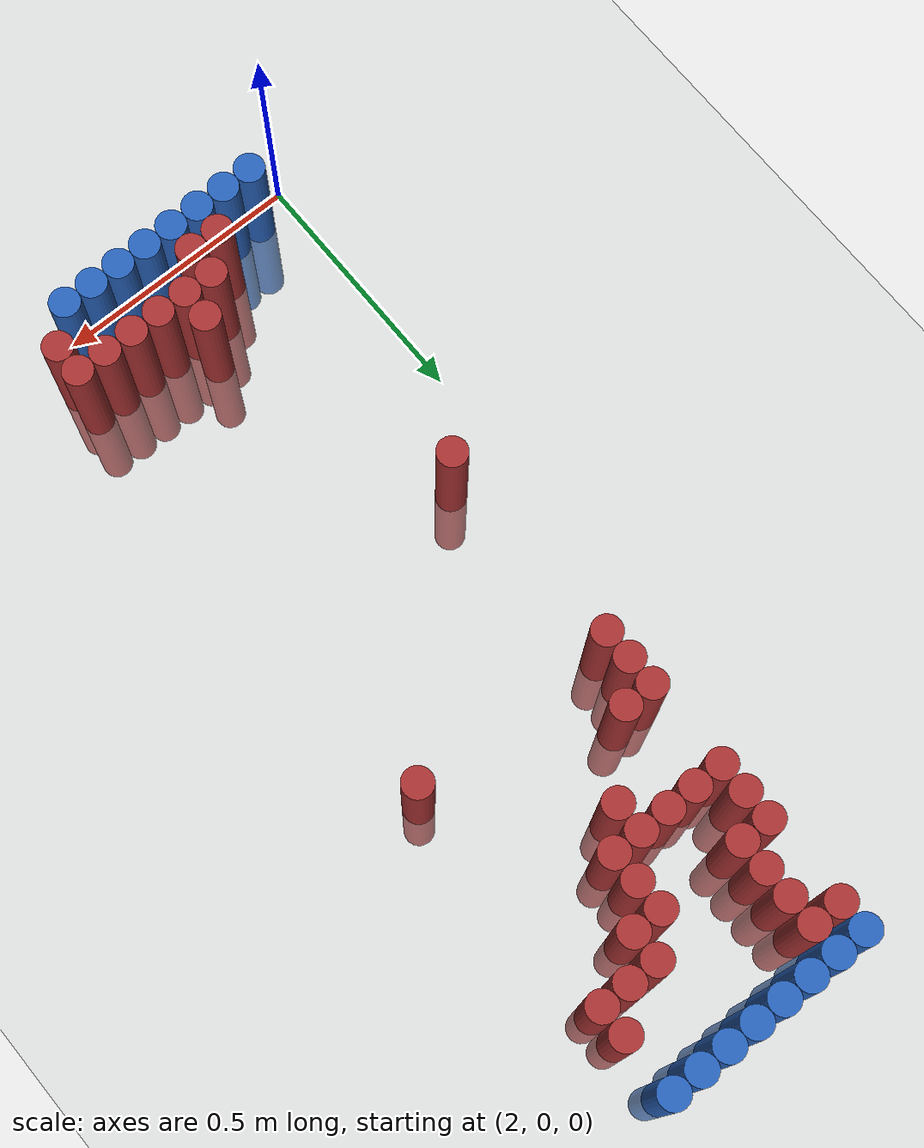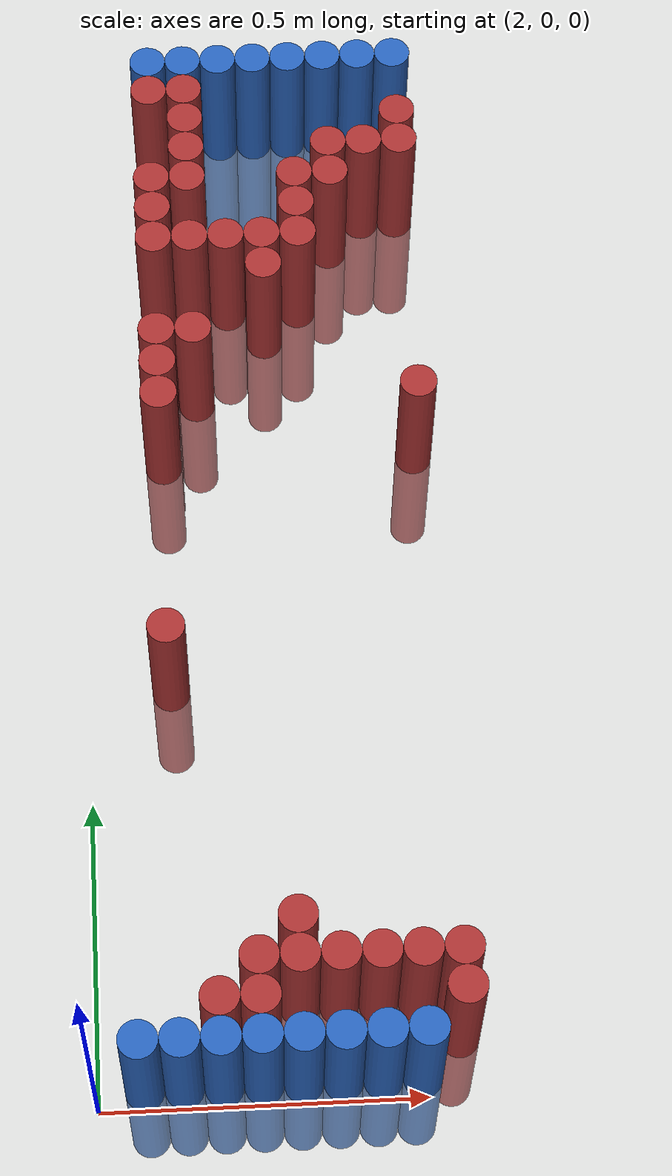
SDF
<sdf version="1.6">
 <world name="default">
  <model name="ground_plane">
   <static>1</static>
   <link name="link">
    <collision name="collision">
     <geometry><plane><normal>0 0 1</normal><size>100 100</size></plane></geometry>
     <surface><friction><ode><mu>100</mu><mu2>50</mu2></ode></friction></surface>
    </collision>
    <visual name="visual">
     <cast_shadows>0</cast_shadows>
     <geometry><plane><normal>0 0 1</normal><size>100 100</size></plane></geometry>
     <material>
      <script><uri>file://media/materials/scripts/gazebo.material</uri><name>Gazebo/Grey</name></script>
     </material>
    </visual>
   </link>
  </model>
  <model name="unit_cylinder_96">
   <static>1</static>
   <pose>2.130000 1.770000 0.000000 0.000000 0.000000 0.000000</pose>
   <link name="link">
    <inertial>
     <mass>1</mass>
     <inertia><ixx>0.145833</ixx><ixy>0</ixy><ixz>0</ixz><iyy>0.145833</iyy><iyz>0</iyz><izz>0.125</izz></inertia>
    </inertial>
    <collision name="collision">
     <geometry><cylinder><radius>0.030000</radius><length>0.5</length></cylinder></geometry>
    </collision>
    <visual name="visual">
     <geometry><cylinder><radius>0.030000</radius><length>0.5</length></cylinder></geometry>
     <material>
      <ambient>0.152000 0.379000 0.720000 1</ambient>
      <diffuse>0.152000 0.379000 0.720000 1</diffuse>
     </material>
     <material>
      <script><name>Gazebo/Grey</name><uri>file://media/materials/scripts/gazebo.material</uri></script>
     </material>
    </visual>
   </link>
  </model>
  <model name="unit_cylinder_97">
   <static>1</static>
   <pose>2.190000 1.770000 0.000000 0.000000 0.000000 0.000000</pose>
   <link name="link">
    <inertial>
     <mass>1</mass>
     <inertia><ixx>0.145833</ixx><ixy>0</ixy><ixz>0</ixz><iyy>0.145833</iyy><iyz>0</iyz><izz>0.125</izz></inertia>
    </inertial>
    <collision name="collision">
     <geometry><cylinder><radius>0.030000</radius><length>0.5</length></cylinder></geometry>
    </collision>
    <visual name="visual">
     <geometry><cylinder><radius>0.030000</radius><length>0.5</length></cylinder></geometry>
     <material>
      <ambient>0.152000 0.379000 0.720000 1</ambient>
      <diffuse>0.152000 0.379000 0.720000 1</diffuse>
     </material>
     <material>
      <script><name>Gazebo/Grey</name><uri>file://media/materials/scripts/gazebo.material</uri></script>
     </material>
    </visual>
   </link>
  </model>
  <model name="unit_cylinder_98">
   <static>1</static>
   <pose>2.250000 1.770000 0.000000 0.000000 0.000000 0.000000</pose>
   <link name="link">
    <inertial>
     <mass>1</mass>
     <inertia><ixx>0.145833</ixx><ixy>0</ixy><ixz>0</ixz><iyy>0.145833</iyy><iyz>0</iyz><izz>0.125</izz></inertia>
    </inertial>
    <collision name="collision">
     <geometry><cylinder><radius>0.030000</radius><length>0.5</length></cylinder></geometry>
    </collision>
    <visual name="visual">
     <geometry><cylinder><radius>0.030000</radius><length>0.5</length></cylinder></geometry>
     <material>
      <ambient>0.152000 0.379000 0.720000 1</ambient>
      <diffuse>0.152000 0.379000 0.720000 1</diffuse>
     </material>
     <material>
      <script><name>Gazebo/Grey</name><uri>file://media/materials/scripts/gazebo.material</uri></script>
     </material>
    </visual>
   </link>
  </model>
  <model name="unit_cylinder_99">
   <static>1</static>
   <pose>2.310000 1.770000 0.000000 0.000000 0.000000 0.000000</pose>
   <link name="link">
    <inertial>
     <mass>1</mass>
     <inertia><ixx>0.145833</ixx><ixy>0</ixy><ixz>0</ixz><iyy>0.145833</iyy><iyz>0</iyz><izz>0.125</izz></inertia>
    </inertial>
    <collision name="collision">
     <geometry><cylinder><radius>0.030000</radius><length>0.5</length></cylinder></geometry>
    </collision>
    <visual name="visual">
     <geometry><cylinder><radius>0.030000</radius><length>0.5</length></cylinder></geometry>
     <material>
      <ambient>0.152000 0.379000 0.720000 1</ambient>
      <diffuse>0.152000 0.379000 0.720000 1</diffuse>
     </material>
     <material>
      <script><name>Gazebo/Grey</name><uri>file://media/materials/scripts/gazebo.material</uri></script>
     </material>
    </visual>
   </link>
  </model>
  <model name="unit_cylinder_100">
   <static>1</static>
   <pose>2.370000 1.770000 0.000000 0.000000 0.000000 0.000000</pose>
   <link name="link">
    <inertial>
     <mass>1</mass>
     <inertia><ixx>0.145833</ixx><ixy>0</ixy><ixz>0</ixz><iyy>0.145833</iyy><iyz>0</iyz><izz>0.125</izz></inertia>
    </inertial>
    <collision name="collision">
     <geometry><cylinder><radius>0.030000</radius><length>0.5</length></cylinder></geometry>
    </collision>
    <visual name="visual">
     <geometry><cylinder><radius>0.030000</radius><length>0.5</length></cylinder></geometry>
     <material>
      <ambient>0.152000 0.379000 0.720000 1</ambient>
      <diffuse>0.152000 0.379000 0.720000 1</diffuse>
     </material>
     <material>
      <script><name>Gazebo/Grey</name><uri>file://media/materials/scripts/gazebo.material</uri></script>
     </material>
    </visual>
   </link>
  </model>
  <model name="unit_cylinder_101">
   <static>1</static>
   <pose>2.430000 1.770000 0.000000 0.000000 0.000000 0.000000</pose>
   <link name="link">
    <inertial>
     <mass>1</mass>
     <inertia><ixx>0.145833</ixx><ixy>0</ixy><ixz>0</ixz><iyy>0.145833</iyy><iyz>0</iyz><izz>0.125</izz></inertia>
    </inertial>
    <collision name="collision">
     <geometry><cylinder><radius>0.030000</radius><length>0.5</length></cylinder></geometry>
    </collision>
    <visual name="visual">
     <geometry><cylinder><radius>0.030000</radius><length>0.5</length></cylinder></geometry>
     <material>
      <ambient>0.152000 0.379000 0.720000 1</ambient>
      <diffuse>0.152000 0.379000 0.720000 1</diffuse>
     </material>
     <material>
      <script><name>Gazebo/Grey</name><uri>file://media/materials/scripts/gazebo.material</uri></script>
     </material>
    </visual>
   </link>
  </model>
  <model name="unit_cylinder_102">
   <static>1</static>
   <pose>2.490000 1.770000 0.000000 0.000000 0.000000 0.000000</pose>
   <link name="link">
    <inertial>
     <mass>1</mass>
     <inertia><ixx>0.145833</ixx><ixy>0</ixy><ixz>0</ixz><iyy>0.145833</iyy><iyz>0</iyz><izz>0.125</izz></inertia>
    </inertial>
    <collision name="collision">
     <geometry><cylinder><radius>0.030000</radius><length>0.5</length></cylinder></geometry>
    </collision>
    <visual name="visual">
     <geometry><cylinder><radius>0.030000</radius><length>0.5</length></cylinder></geometry>
     <material>
      <ambient>0.152000 0.379000 0.720000 1</ambient>
      <diffuse>0.152000 0.379000 0.720000 1</diffuse>
     </material>
     <material>
      <script><name>Gazebo/Grey</name><uri>file://media/materials/scripts/gazebo.material</uri></script>
     </material>
    </visual>
   </link>
  </model>
  <model name="unit_cylinder_103">
   <static>1</static>
   <pose>2.550000 1.770000 0.000000 0.000000 0.000000 0.000000</pose>
   <link name="link">
    <inertial>
     <mass>1</mass>
     <inertia><ixx>0.145833</ixx><ixy>0</ixy><ixz>0</ixz><iyy>0.145833</iyy><iyz>0</iyz><izz>0.125</izz></inertia>
    </inertial>
    <collision name="collision">
     <geometry><cylinder><radius>0.030000</radius><length>0.5</length></cylinder></geometry>
    </collision>
    <visual name="visual">
     <geometry><cylinder><radius>0.030000</radius><length>0.5</length></cylinder></geometry>
     <material>
      <ambient>0.152000 0.379000 0.720000 1</ambient>
      <diffuse>0.152000 0.379000 0.720000 1</diffuse>
     </material>
     <material>
      <script><name>Gazebo/Grey</name><uri>file://media/materials/scripts/gazebo.material</uri></script>
     </material>
    </visual>
   </link>
  </model>
  <model name="unit_cylinder_125">
   <static>1</static>
   <pose>2.130000 1.710000 0.000000 0.000000 0.000000 0.000000</pose>
   <link name="link">
    <inertial>
     <mass>1</mass>
     <inertia><ixx>0.145833</ixx><ixy>0</ixy><ixz>0</ixz><iyy>0.145833</iyy><iyz>0</iyz><izz>0.125</izz></inertia>
    </inertial>
    <collision name="collision">
     <geometry><cylinder><radius>0.030000</radius><length>0.5</length></cylinder></geometry>
    </collision>
    <visual name="visual">
     <geometry><cylinder><radius>0.030000</radius><length>0.5</length></cylinder></geometry>
     <material>
      <ambient>0.648000 0.192000 0.192000 1</ambient>
      <diffuse>0.648000 0.192000 0.192000 1</diffuse>
     </material>
     <material>
      <script><name>Gazebo/Grey</name><uri>file://media/materials/scripts/gazebo.material</uri></script>
     </material>
    </visual>
   </link>
  </model>
  <model name="unit_cylinder_126">
   <static>1</static>
   <pose>2.190000 1.710000 0.000000 0.000000 0.000000 0.000000</pose>
   <link name="link">
    <inertial>
     <mass>1</mass>
     <inertia><ixx>0.145833</ixx><ixy>0</ixy><ixz>0</ixz><iyy>0.145833</iyy><iyz>0</iyz><izz>0.125</izz></inertia>
    </inertial>
    <collision name="collision">
     <geometry><cylinder><radius>0.030000</radius><length>0.5</length></cylinder></geometry>
    </collision>
    <visual name="visual">
     <geometry><cylinder><radius>0.030000</radius><length>0.5</length></cylinder></geometry>
     <material>
      <ambient>0.648000 0.192000 0.192000 1</ambient>
      <diffuse>0.648000 0.192000 0.192000 1</diffuse>
     </material>
     <material>
      <script><name>Gazebo/Grey</name><uri>file://media/materials/scripts/gazebo.material</uri></script>
     </material>
    </visual>
   </link>
  </model>
  <model name="unit_cylinder_132">
   <static>1</static>
   <pose>2.190000 1.650000 0.000000 0.000000 0.000000 0.000000</pose>
   <link name="link">
    <inertial>
     <mass>1</mass>
     <inertia><ixx>0.145833</ixx><ixy>0</ixy><ixz>0</ixz><iyy>0.145833</iyy><iyz>0</iyz><izz>0.125</izz></inertia>
    </inertial>
    <collision name="collision">
     <geometry><cylinder><radius>0.030000</radius><length>0.5</length></cylinder></geometry>
    </collision>
    <visual name="visual">
     <geometry><cylinder><radius>0.030000</radius><length>0.5</length></cylinder></geometry>
     <material>
      <ambient>0.648000 0.192000 0.192000 1</ambient>
      <diffuse>0.648000 0.192000 0.192000 1</diffuse>
     </material>
     <material>
      <script><name>Gazebo/Grey</name><uri>file://media/materials/scripts/gazebo.material</uri></script>
     </material>
    </visual>
   </link>
  </model>
  <model name="unit_cylinder_133">
   <static>1</static>
   <pose>2.550000 1.650000 0.000000 0.000000 0.000000 0.000000</pose>
   <link name="link">
    <inertial>
     <mass>1</mass>
     <inertia><ixx>0.145833</ixx><ixy>0</ixy><ixz>0</ixz><iyy>0.145833</iyy><iyz>0</iyz><izz>0.125</izz></inertia>
    </inertial>
    <collision name="collision">
     <geometry><cylinder><radius>0.030000</radius><length>0.5</length></cylinder></geometry>
    </collision>
    <visual name="visual">
     <geometry><cylinder><radius>0.030000</radius><length>0.5</length></cylinder></geometry>
     <material>
      <ambient>0.648000 0.192000 0.192000 1</ambient>
      <diffuse>0.648000 0.192000 0.192000 1</diffuse>
     </material>
     <material>
      <script><name>Gazebo/Grey</name><uri>file://media/materials/scripts/gazebo.material</uri></script>
     </material>
    </visual>
   </link>
  </model>
  <model name="unit_cylinder_145">
   <static>1</static>
   <pose>2.190000 1.590000 0.000000 0.000000 0.000000 0.000000</pose>
   <link name="link">
    <inertial>
     <mass>1</mass>
     <inertia><ixx>0.145833</ixx><ixy>0</ixy><ixz>0</ixz><iyy>0.145833</iyy><iyz>0</iyz><izz>0.125</izz></inertia>
    </inertial>
    <collision name="collision">
     <geometry><cylinder><radius>0.030000</radius><length>0.5</length></cylinder></geometry>
    </collision>
    <visual name="visual">
     <geometry><cylinder><radius>0.030000</radius><length>0.5</length></cylinder></geometry>
     <material>
      <ambient>0.648000 0.192000 0.192000 1</ambient>
      <diffuse>0.648000 0.192000 0.192000 1</diffuse>
     </material>
     <material>
      <script><name>Gazebo/Grey</name><uri>file://media/materials/scripts/gazebo.material</uri></script>
     </material>
    </visual>
   </link>
  </model>
  <model name="unit_cylinder_146">
   <static>1</static>
   <pose>2.430000 1.590000 0.000000 0.000000 0.000000 0.000000</pose>
   <link name="link">
    <inertial>
     <mass>1</mass>
     <inertia><ixx>0.145833</ixx><ixy>0</ixy><ixz>0</ixz><iyy>0.145833</iyy><iyz>0</iyz><izz>0.125</izz></inertia>
    </inertial>
    <collision name="collision">
     <geometry><cylinder><radius>0.030000</radius><length>0.5</length></cylinder></geometry>
    </collision>
    <visual name="visual">
     <geometry><cylinder><radius>0.030000</radius><length>0.5</length></cylinder></geometry>
     <material>
      <ambient>0.648000 0.192000 0.192000 1</ambient>
      <diffuse>0.648000 0.192000 0.192000 1</diffuse>
     </material>
     <material>
      <script><name>Gazebo/Grey</name><uri>file://media/materials/scripts/gazebo.material</uri></script>
     </material>
    </visual>
   </link>
  </model>
  <model name="unit_cylinder_147">
   <static>1</static>
   <pose>2.490000 1.590000 0.000000 0.000000 0.000000 0.000000</pose>
   <link name="link">
    <inertial>
     <mass>1</mass>
     <inertia><ixx>0.145833</ixx><ixy>0</ixy><ixz>0</ixz><iyy>0.145833</iyy><iyz>0</iyz><izz>0.125</izz></inertia>
    </inertial>
    <collision name="collision">
     <geometry><cylinder><radius>0.030000</radius><length>0.5</length></cylinder></geometry>
    </collision>
    <visual name="visual">
     <geometry><cylinder><radius>0.030000</radius><length>0.5</length></cylinder></geometry>
     <material>
      <ambient>0.648000 0.192000 0.192000 1</ambient>
      <diffuse>0.648000 0.192000 0.192000 1</diffuse>
     </material>
     <material>
      <script><name>Gazebo/Grey</name><uri>file://media/materials/scripts/gazebo.material</uri></script>
     </material>
    </visual>
   </link>
  </model>
  <model name="unit_cylinder_148">
   <static>1</static>
   <pose>2.550000 1.590000 0.000000 0.000000 0.000000 0.000000</pose>
   <link name="link">
    <inertial>
     <mass>1</mass>
     <inertia><ixx>0.145833</ixx><ixy>0</ixy><ixz>0</ixz><iyy>0.145833</iyy><iyz>0</iyz><izz>0.125</izz></inertia>
    </inertial>
    <collision name="collision">
     <geometry><cylinder><radius>0.030000</radius><length>0.5</length></cylinder></geometry>
    </collision>
    <visual name="visual">
     <geometry><cylinder><radius>0.030000</radius><length>0.5</length></cylinder></geometry>
     <material>
      <ambient>0.648000 0.192000 0.192000 1</ambient>
      <diffuse>0.648000 0.192000 0.192000 1</diffuse>
     </material>
     <material>
      <script><name>Gazebo/Grey</name><uri>file://media/materials/scripts/gazebo.material</uri></script>
     </material>
    </visual>
   </link>
  </model>
  <model name="unit_cylinder_154">
   <static>1</static>
   <pose>2.130000 1.530000 0.000000 0.000000 0.000000 0.000000</pose>
   <link name="link">
    <inertial>
     <mass>1</mass>
     <inertia><ixx>0.145833</ixx><ixy>0</ixy><ixz>0</ixz><iyy>0.145833</iyy><iyz>0</iyz><izz>0.125</izz></inertia>
    </inertial>
    <collision name="collision">
     <geometry><cylinder><radius>0.030000</radius><length>0.5</length></cylinder></geometry>
    </collision>
    <visual name="visual">
     <geometry><cylinder><radius>0.030000</radius><length>0.5</length></cylinder></geometry>
     <material>
      <ambient>0.648000 0.192000 0.192000 1</ambient>
      <diffuse>0.648000 0.192000 0.192000 1</diffuse>
     </material>
     <material>
      <script><name>Gazebo/Grey</name><uri>file://media/materials/scripts/gazebo.material</uri></script>
     </material>
    </visual>
   </link>
  </model>
  <model name="unit_cylinder_155">
   <static>1</static>
   <pose>2.190000 1.530000 0.000000 0.000000 0.000000 0.000000</pose>
   <link name="link">
    <inertial>
     <mass>1</mass>
     <inertia><ixx>0.145833</ixx><ixy>0</ixy><ixz>0</ixz><iyy>0.145833</iyy><iyz>0</iyz><izz>0.125</izz></inertia>
    </inertial>
    <collision name="collision">
     <geometry><cylinder><radius>0.030000</radius><length>0.5</length></cylinder></geometry>
    </collision>
    <visual name="visual">
     <geometry><cylinder><radius>0.030000</radius><length>0.5</length></cylinder></geometry>
     <material>
      <ambient>0.648000 0.192000 0.192000 1</ambient>
      <diffuse>0.648000 0.192000 0.192000 1</diffuse>
     </material>
     <material>
      <script><name>Gazebo/Grey</name><uri>file://media/materials/scripts/gazebo.material</uri></script>
     </material>
    </visual>
   </link>
  </model>
  <model name="unit_cylinder_156">
   <static>1</static>
   <pose>2.370000 1.530000 0.000000 0.000000 0.000000 0.000000</pose>
   <link name="link">
    <inertial>
     <mass>1</mass>
     <inertia><ixx>0.145833</ixx><ixy>0</ixy><ixz>0</ixz><iyy>0.145833</iyy><iyz>0</iyz><izz>0.125</izz></inertia>
    </inertial>
    <collision name="collision">
     <geometry><cylinder><radius>0.030000</radius><length>0.5</length></cylinder></geometry>
    </collision>
    <visual name="visual">
     <geometry><cylinder><radius>0.030000</radius><length>0.5</length></cylinder></geometry>
     <material>
      <ambient>0.648000 0.192000 0.192000 1</ambient>
      <diffuse>0.648000 0.192000 0.192000 1</diffuse>
     </material>
     <material>
      <script><name>Gazebo/Grey</name><uri>file://media/materials/scripts/gazebo.material</uri></script>
     </material>
    </visual>
   </link>
  </model>
  <model name="unit_cylinder_157">
   <static>1</static>
   <pose>2.430000 1.530000 0.000000 0.000000 0.000000 0.000000</pose>
   <link name="link">
    <inertial>
     <mass>1</mass>
     <inertia><ixx>0.145833</ixx><ixy>0</ixy><ixz>0</ixz><iyy>0.145833</iyy><iyz>0</iyz><izz>0.125</izz></inertia>
    </inertial>
    <collision name="collision">
     <geometry><cylinder><radius>0.030000</radius><length>0.5</length></cylinder></geometry>
    </collision>
    <visual name="visual">
     <geometry><cylinder><radius>0.030000</radius><length>0.5</length></cylinder></geometry>
     <material>
      <ambient>0.648000 0.192000 0.192000 1</ambient>
      <diffuse>0.648000 0.192000 0.192000 1</diffuse>
     </material>
     <material>
      <script><name>Gazebo/Grey</name><uri>file://media/materials/scripts/gazebo.material</uri></script>
     </material>
    </visual>
   </link>
  </model>
  <model name="unit_cylinder_161">
   <static>1</static>
   <pose>2.130000 1.470000 0.000000 0.000000 0.000000 0.000000</pose>
   <link name="link">
    <inertial>
     <mass>1</mass>
     <inertia><ixx>0.145833</ixx><ixy>0</ixy><ixz>0</ixz><iyy>0.145833</iyy><iyz>0</iyz><izz>0.125</izz></inertia>
    </inertial>
    <collision name="collision">
     <geometry><cylinder><radius>0.030000</radius><length>0.5</length></cylinder></geometry>
    </collision>
    <visual name="visual">
     <geometry><cylinder><radius>0.030000</radius><length>0.5</length></cylinder></geometry>
     <material>
      <ambient>0.648000 0.192000 0.192000 1</ambient>
      <diffuse>0.648000 0.192000 0.192000 1</diffuse>
     </material>
     <material>
      <script><name>Gazebo/Grey</name><uri>file://media/materials/scripts/gazebo.material</uri></script>
     </material>
    </visual>
   </link>
  </model>
  <model name="unit_cylinder_162">
   <static>1</static>
   <pose>2.370000 1.470000 0.000000 0.000000 0.000000 0.000000</pose>
   <link name="link">
    <inertial>
     <mass>1</mass>
     <inertia><ixx>0.145833</ixx><ixy>0</ixy><ixz>0</ixz><iyy>0.145833</iyy><iyz>0</iyz><izz>0.125</izz></inertia>
    </inertial>
    <collision name="collision">
     <geometry><cylinder><radius>0.030000</radius><length>0.5</length></cylinder></geometry>
    </collision>
    <visual name="visual">
     <geometry><cylinder><radius>0.030000</radius><length>0.5</length></cylinder></geometry>
     <material>
      <ambient>0.648000 0.192000 0.192000 1</ambient>
      <diffuse>0.648000 0.192000 0.192000 1</diffuse>
     </material>
     <material>
      <script><name>Gazebo/Grey</name><uri>file://media/materials/scripts/gazebo.material</uri></script>
     </material>
    </visual>
   </link>
  </model>
  <model name="unit_cylinder_173">
   <static>1</static>
   <pose>2.130000 1.410000 0.000000 0.000000 0.000000 0.000000</pose>
   <link name="link">
    <inertial>
     <mass>1</mass>
     <inertia><ixx>0.145833</ixx><ixy>0</ixy><ixz>0</ixz><iyy>0.145833</iyy><iyz>0</iyz><izz>0.125</izz></inertia>
    </inertial>
    <collision name="collision">
     <geometry><cylinder><radius>0.030000</radius><length>0.5</length></cylinder></geometry>
    </collision>
    <visual name="visual">
     <geometry><cylinder><radius>0.030000</radius><length>0.5</length></cylinder></geometry>
     <material>
      <ambient>0.648000 0.192000 0.192000 1</ambient>
      <diffuse>0.648000 0.192000 0.192000 1</diffuse>
     </material>
     <material>
      <script><name>Gazebo/Grey</name><uri>file://media/materials/scripts/gazebo.material</uri></script>
     </material>
    </visual>
   </link>
  </model>
  <model name="unit_cylinder_174">
   <static>1</static>
   <pose>2.190000 1.410000 0.000000 0.000000 0.000000 0.000000</pose>
   <link name="link">
    <inertial>
     <mass>1</mass>
     <inertia><ixx>0.145833</ixx><ixy>0</ixy><ixz>0</ixz><iyy>0.145833</iyy><iyz>0</iyz><izz>0.125</izz></inertia>
    </inertial>
    <collision name="collision">
     <geometry><cylinder><radius>0.030000</radius><length>0.5</length></cylinder></geometry>
    </collision>
    <visual name="visual">
     <geometry><cylinder><radius>0.030000</radius><length>0.5</length></cylinder></geometry>
     <material>
      <ambient>0.648000 0.192000 0.192000 1</ambient>
      <diffuse>0.648000 0.192000 0.192000 1</diffuse>
     </material>
     <material>
      <script><name>Gazebo/Grey</name><uri>file://media/materials/scripts/gazebo.material</uri></script>
     </material>
    </visual>
   </link>
  </model>
  <model name="unit_cylinder_175">
   <static>1</static>
   <pose>2.250000 1.410000 0.000000 0.000000 0.000000 0.000000</pose>
   <link name="link">
    <inertial>
     <mass>1</mass>
     <inertia><ixx>0.145833</ixx><ixy>0</ixy><ixz>0</ixz><iyy>0.145833</iyy><iyz>0</iyz><izz>0.125</izz></inertia>
    </inertial>
    <collision name="collision">
     <geometry><cylinder><radius>0.030000</radius><length>0.5</length></cylinder></geometry>
    </collision>
    <visual name="visual">
     <geometry><cylinder><radius>0.030000</radius><length>0.5</length></cylinder></geometry>
     <material>
      <ambient>0.648000 0.192000 0.192000 1</ambient>
      <diffuse>0.648000 0.192000 0.192000 1</diffuse>
     </material>
     <material>
      <script><name>Gazebo/Grey</name><uri>file://media/materials/scripts/gazebo.material</uri></script>
     </material>
    </visual>
   </link>
  </model>
  <model name="unit_cylinder_176">
   <static>1</static>
   <pose>2.310000 1.410000 0.000000 0.000000 0.000000 0.000000</pose>
   <link name="link">
    <inertial>
     <mass>1</mass>
     <inertia><ixx>0.145833</ixx><ixy>0</ixy><ixz>0</ixz><iyy>0.145833</iyy><iyz>0</iyz><izz>0.125</izz></inertia>
    </inertial>
    <collision name="collision">
     <geometry><cylinder><radius>0.030000</radius><length>0.5</length></cylinder></geometry>
    </collision>
    <visual name="visual">
     <geometry><cylinder><radius>0.030000</radius><length>0.5</length></cylinder></geometry>
     <material>
      <ambient>0.648000 0.192000 0.192000 1</ambient>
      <diffuse>0.648000 0.192000 0.192000 1</diffuse>
     </material>
     <material>
      <script><name>Gazebo/Grey</name><uri>file://media/materials/scripts/gazebo.material</uri></script>
     </material>
    </visual>
   </link>
  </model>
  <model name="unit_cylinder_177">
   <static>1</static>
   <pose>2.370000 1.410000 0.000000 0.000000 0.000000 0.000000</pose>
   <link name="link">
    <inertial>
     <mass>1</mass>
     <inertia><ixx>0.145833</ixx><ixy>0</ixy><ixz>0</ixz><iyy>0.145833</iyy><iyz>0</iyz><izz>0.125</izz></inertia>
    </inertial>
    <collision name="collision">
     <geometry><cylinder><radius>0.030000</radius><length>0.5</length></cylinder></geometry>
    </collision>
    <visual name="visual">
     <geometry><cylinder><radius>0.030000</radius><length>0.5</length></cylinder></geometry>
     <material>
      <ambient>0.648000 0.192000 0.192000 1</ambient>
      <diffuse>0.648000 0.192000 0.192000 1</diffuse>
     </material>
     <material>
      <script><name>Gazebo/Grey</name><uri>file://media/materials/scripts/gazebo.material</uri></script>
     </material>
    </visual>
   </link>
  </model>
  <model name="unit_cylinder_182">
   <static>1</static>
   <pose>2.310000 1.350000 0.000000 0.000000 0.000000 0.000000</pose>
   <link name="link">
    <inertial>
     <mass>1</mass>
     <inertia><ixx>0.145833</ixx><ixy>0</ixy><ixz>0</ixz><iyy>0.145833</iyy><iyz>0</iyz><izz>0.125</izz></inertia>
    </inertial>
    <collision name="collision">
     <geometry><cylinder><radius>0.030000</radius><length>0.5</length></cylinder></geometry>
    </collision>
    <visual name="visual">
     <geometry><cylinder><radius>0.030000</radius><length>0.5</length></cylinder></geometry>
     <material>
      <ambient>0.648000 0.192000 0.192000 1</ambient>
      <diffuse>0.648000 0.192000 0.192000 1</diffuse>
     </material>
     <material>
      <script><name>Gazebo/Grey</name><uri>file://media/materials/scripts/gazebo.material</uri></script>
     </material>
    </visual>
   </link>
  </model>
  <model name="unit_cylinder_193">
   <static>1</static>
   <pose>2.130000 1.230000 0.000000 0.000000 0.000000 0.000000</pose>
   <link name="link">
    <inertial>
     <mass>1</mass>
     <inertia><ixx>0.145833</ixx><ixy>0</ixy><ixz>0</ixz><iyy>0.145833</iyy><iyz>0</iyz><izz>0.125</izz></inertia>
    </inertial>
    <collision name="collision">
     <geometry><cylinder><radius>0.030000</radius><length>0.5</length></cylinder></geometry>
    </collision>
    <visual name="visual">
     <geometry><cylinder><radius>0.030000</radius><length>0.5</length></cylinder></geometry>
     <material>
      <ambient>0.648000 0.192000 0.192000 1</ambient>
      <diffuse>0.648000 0.192000 0.192000 1</diffuse>
     </material>
     <material>
      <script><name>Gazebo/Grey</name><uri>file://media/materials/scripts/gazebo.material</uri></script>
     </material>
    </visual>
   </link>
  </model>
  <model name="unit_cylinder_194">
   <static>1</static>
   <pose>2.190000 1.230000 0.000000 0.000000 0.000000 0.000000</pose>
   <link name="link">
    <inertial>
     <mass>1</mass>
     <inertia><ixx>0.145833</ixx><ixy>0</ixy><ixz>0</ixz><iyy>0.145833</iyy><iyz>0</iyz><izz>0.125</izz></inertia>
    </inertial>
    <collision name="collision">
     <geometry><cylinder><radius>0.030000</radius><length>0.5</length></cylinder></geometry>
    </collision>
    <visual name="visual">
     <geometry><cylinder><radius>0.030000</radius><length>0.5</length></cylinder></geometry>
     <material>
      <ambient>0.648000 0.192000 0.192000 1</ambient>
      <diffuse>0.648000 0.192000 0.192000 1</diffuse>
     </material>
     <material>
      <script><name>Gazebo/Grey</name><uri>file://media/materials/scripts/gazebo.material</uri></script>
     </material>
    </visual>
   </link>
  </model>
  <model name="unit_cylinder_200">
   <static>1</static>
   <pose>2.130000 1.170000 0.000000 0.000000 0.000000 0.000000</pose>
   <link name="link">
    <inertial>
     <mass>1</mass>
     <inertia><ixx>0.145833</ixx><ixy>0</ixy><ixz>0</ixz><iyy>0.145833</iyy><iyz>0</iyz><izz>0.125</izz></inertia>
    </inertial>
    <collision name="collision">
     <geometry><cylinder><radius>0.030000</radius><length>0.5</length></cylinder></geometry>
    </collision>
    <visual name="visual">
     <geometry><cylinder><radius>0.030000</radius><length>0.5</length></cylinder></geometry>
     <material>
      <ambient>0.648000 0.192000 0.192000 1</ambient>
      <diffuse>0.648000 0.192000 0.192000 1</diffuse>
     </material>
     <material>
      <script><name>Gazebo/Grey</name><uri>file://media/materials/scripts/gazebo.material</uri></script>
     </material>
    </visual>
   </link>
  </model>
  <model name="unit_cylinder_208">
   <static>1</static>
   <pose>2.130000 1.110000 0.000000 0.000000 0.000000 0.000000</pose>
   <link name="link">
    <inertial>
     <mass>1</mass>
     <inertia><ixx>0.145833</ixx><ixy>0</ixy><ixz>0</ixz><iyy>0.145833</iyy><iyz>0</iyz><izz>0.125</izz></inertia>
    </inertial>
    <collision name="collision">
     <geometry><cylinder><radius>0.030000</radius><length>0.5</length></cylinder></geometry>
    </collision>
    <visual name="visual">
     <geometry><cylinder><radius>0.030000</radius><length>0.5</length></cylinder></geometry>
     <material>
      <ambient>0.648000 0.192000 0.192000 1</ambient>
      <diffuse>0.648000 0.192000 0.192000 1</diffuse>
     </material>
     <material>
      <script><name>Gazebo/Grey</name><uri>file://media/materials/scripts/gazebo.material</uri></script>
     </material>
    </visual>
   </link>
  </model>
  <model name="unit_cylinder_209">
   <static>1</static>
   <pose>2.550000 1.110000 0.000000 0.000000 0.000000 0.000000</pose>
   <link name="link">
    <inertial>
     <mass>1</mass>
     <inertia><ixx>0.145833</ixx><ixy>0</ixy><ixz>0</ixz><iyy>0.145833</iyy><iyz>0</iyz><izz>0.125</izz></inertia>
    </inertial>
    <collision name="collision">
     <geometry><cylinder><radius>0.030000</radius><length>0.5</length></cylinder></geometry>
    </collision>
    <visual name="visual">
     <geometry><cylinder><radius>0.030000</radius><length>0.5</length></cylinder></geometry>
     <material>
      <ambient>0.648000 0.192000 0.192000 1</ambient>
      <diffuse>0.648000 0.192000 0.192000 1</diffuse>
     </material>
     <material>
      <script><name>Gazebo/Grey</name><uri>file://media/materials/scripts/gazebo.material</uri></script>
     </material>
    </visual>
   </link>
  </model>
  <model name="unit_cylinder_215">
   <static>1</static>
   <pose>2.130000 0.690000 0.000000 0.000000 0.000000 0.000000</pose>
   <link name="link">
    <inertial>
     <mass>1</mass>
     <inertia><ixx>0.145833</ixx><ixy>0</ixy><ixz>0</ixz><iyy>0.145833</iyy><iyz>0</iyz><izz>0.125</izz></inertia>
    </inertial>
    <collision name="collision">
     <geometry><cylinder><radius>0.030000</radius><length>0.5</length></cylinder></geometry>
    </collision>
    <visual name="visual">
     <geometry><cylinder><radius>0.030000</radius><length>0.5</length></cylinder></geometry>
     <material>
      <ambient>0.648000 0.192000 0.192000 1</ambient>
      <diffuse>0.648000 0.192000 0.192000 1</diffuse>
     </material>
     <material>
      <script><name>Gazebo/Grey</name><uri>file://media/materials/scripts/gazebo.material</uri></script>
     </material>
    </visual>
   </link>
  </model>
  <model name="unit_cylinder_255">
   <static>1</static>
   <pose>2.310000 0.210000 0.000000 0.000000 0.000000 0.000000</pose>
   <link name="link">
    <inertial>
     <mass>1</mass>
     <inertia><ixx>0.145833</ixx><ixy>0</ixy><ixz>0</ixz><iyy>0.145833</iyy><iyz>0</iyz><izz>0.125</izz></inertia>
    </inertial>
    <collision name="collision">
     <geometry><cylinder><radius>0.030000</radius><length>0.5</length></cylinder></geometry>
    </collision>
    <visual name="visual">
     <geometry><cylinder><radius>0.030000</radius><length>0.5</length></cylinder></geometry>
     <material>
      <ambient>0.648000 0.192000 0.192000 1</ambient>
      <diffuse>0.648000 0.192000 0.192000 1</diffuse>
     </material>
     <material>
      <script><name>Gazebo/Grey</name><uri>file://media/materials/scripts/gazebo.material</uri></script>
     </material>
    </visual>
   </link>
  </model>
  <model name="unit_cylinder_261">
   <static>1</static>
   <pose>2.250000 0.150000 0.000000 0.000000 0.000000 0.000000</pose>
   <link name="link">
    <inertial>
     <mass>1</mass>
     <inertia><ixx>0.145833</ixx><ixy>0</ixy><ixz>0</ixz><iyy>0.145833</iyy><iyz>0</iyz><izz>0.125</izz></inertia>
    </inertial>
    <collision name="collision">
     <geometry><cylinder><radius>0.030000</radius><length>0.5</length></cylinder></geometry>
    </collision>
    <visual name="visual">
     <geometry><cylinder><radius>0.030000</radius><length>0.5</length></cylinder></geometry>
     <material>
      <ambient>0.648000 0.192000 0.192000 1</ambient>
      <diffuse>0.648000 0.192000 0.192000 1</diffuse>
     </material>
     <material>
      <script><name>Gazebo/Grey</name><uri>file://media/materials/scripts/gazebo.material</uri></script>
     </material>
    </visual>
   </link>
  </model>
  <model name="unit_cylinder_262">
   <static>1</static>
   <pose>2.310000 0.150000 0.000000 0.000000 0.000000 0.000000</pose>
   <link name="link">
    <inertial>
     <mass>1</mass>
     <inertia><ixx>0.145833</ixx><ixy>0</ixy><ixz>0</ixz><iyy>0.145833</iyy><iyz>0</iyz><izz>0.125</izz></inertia>
    </inertial>
    <collision name="collision">
     <geometry><cylinder><radius>0.030000</radius><length>0.5</length></cylinder></geometry>
    </collision>
    <visual name="visual">
     <geometry><cylinder><radius>0.030000</radius><length>0.5</length></cylinder></geometry>
     <material>
      <ambient>0.648000 0.192000 0.192000 1</ambient>
      <diffuse>0.648000 0.192000 0.192000 1</diffuse>
     </material>
     <material>
      <script><name>Gazebo/Grey</name><uri>file://media/materials/scripts/gazebo.material</uri></script>
     </material>
    </visual>
   </link>
  </model>
  <model name="unit_cylinder_263">
   <static>1</static>
   <pose>2.370000 0.150000 0.000000 0.000000 0.000000 0.000000</pose>
   <link name="link">
    <inertial>
     <mass>1</mass>
     <inertia><ixx>0.145833</ixx><ixy>0</ixy><ixz>0</ixz><iyy>0.145833</iyy><iyz>0</iyz><izz>0.125</izz></inertia>
    </inertial>
    <collision name="collision">
     <geometry><cylinder><radius>0.030000</radius><length>0.5</length></cylinder></geometry>
    </collision>
    <visual name="visual">
     <geometry><cylinder><radius>0.030000</radius><length>0.5</length></cylinder></geometry>
     <material>
      <ambient>0.648000 0.192000 0.192000 1</ambient>
      <diffuse>0.648000 0.192000 0.192000 1</diffuse>
     </material>
     <material>
      <script><name>Gazebo/Grey</name><uri>file://media/materials/scripts/gazebo.material</uri></script>
     </material>
    </visual>
   </link>
  </model>
  <model name="unit_cylinder_264">
   <static>1</static>
   <pose>2.430000 0.150000 0.000000 0.000000 0.000000 0.000000</pose>
   <link name="link">
    <inertial>
     <mass>1</mass>
     <inertia><ixx>0.145833</ixx><ixy>0</ixy><ixz>0</ixz><iyy>0.145833</iyy><iyz>0</iyz><izz>0.125</izz></inertia>
    </inertial>
    <collision name="collision">
     <geometry><cylinder><radius>0.030000</radius><length>0.5</length></cylinder></geometry>
    </collision>
    <visual name="visual">
     <geometry><cylinder><radius>0.030000</radius><length>0.5</length></cylinder></geometry>
     <material>
      <ambient>0.648000 0.192000 0.192000 1</ambient>
      <diffuse>0.648000 0.192000 0.192000 1</diffuse>
     </material>
     <material>
      <script><name>Gazebo/Grey</name><uri>file://media/materials/scripts/gazebo.material</uri></script>
     </material>
    </visual>
   </link>
  </model>
  <model name="unit_cylinder_265">
   <static>1</static>
   <pose>2.490000 0.150000 0.000000 0.000000 0.000000 0.000000</pose>
   <link name="link">
    <inertial>
     <mass>1</mass>
     <inertia><ixx>0.145833</ixx><ixy>0</ixy><ixz>0</ixz><iyy>0.145833</iyy><iyz>0</iyz><izz>0.125</izz></inertia>
    </inertial>
    <collision name="collision">
     <geometry><cylinder><radius>0.030000</radius><length>0.5</length></cylinder></geometry>
    </collision>
    <visual name="visual">
     <geometry><cylinder><radius>0.030000</radius><length>0.5</length></cylinder></geometry>
     <material>
      <ambient>0.648000 0.192000 0.192000 1</ambient>
      <diffuse>0.648000 0.192000 0.192000 1</diffuse>
     </material>
     <material>
      <script><name>Gazebo/Grey</name><uri>file://media/materials/scripts/gazebo.material</uri></script>
     </material>
    </visual>
   </link>
  </model>
  <model name="unit_cylinder_266">
   <static>1</static>
   <pose>2.550000 0.150000 0.000000 0.000000 0.000000 0.000000</pose>
   <link name="link">
    <inertial>
     <mass>1</mass>
     <inertia><ixx>0.145833</ixx><ixy>0</ixy><ixz>0</ixz><iyy>0.145833</iyy><iyz>0</iyz><izz>0.125</izz></inertia>
    </inertial>
    <collision name="collision">
     <geometry><cylinder><radius>0.030000</radius><length>0.5</length></cylinder></geometry>
    </collision>
    <visual name="visual">
     <geometry><cylinder><radius>0.030000</radius><length>0.5</length></cylinder></geometry>
     <material>
      <ambient>0.648000 0.192000 0.192000 1</ambient>
      <diffuse>0.648000 0.192000 0.192000 1</diffuse>
     </material>
     <material>
      <script><name>Gazebo/Grey</name><uri>file://media/materials/scripts/gazebo.material</uri></script>
     </material>
    </visual>
   </link>
  </model>
  <model name="unit_cylinder_270">
   <static>1</static>
   <pose>2.190000 0.090000 0.000000 0.000000 0.000000 0.000000</pose>
   <link name="link">
    <inertial>
     <mass>1</mass>
     <inertia><ixx>0.145833</ixx><ixy>0</ixy><ixz>0</ixz><iyy>0.145833</iyy><iyz>0</iyz><izz>0.125</izz></inertia>
    </inertial>
    <collision name="collision">
     <geometry><cylinder><radius>0.030000</radius><length>0.5</length></cylinder></geometry>
    </collision>
    <visual name="visual">
     <geometry><cylinder><radius>0.030000</radius><length>0.5</length></cylinder></geometry>
     <material>
      <ambient>0.648000 0.192000 0.192000 1</ambient>
      <diffuse>0.648000 0.192000 0.192000 1</diffuse>
     </material>
     <material>
      <script><name>Gazebo/Grey</name><uri>file://media/materials/scripts/gazebo.material</uri></script>
     </material>
    </visual>
   </link>
  </model>
  <model name="unit_cylinder_271">
   <static>1</static>
   <pose>2.250000 0.090000 0.000000 0.000000 0.000000 0.000000</pose>
   <link name="link">
    <inertial>
     <mass>1</mass>
     <inertia><ixx>0.145833</ixx><ixy>0</ixy><ixz>0</ixz><iyy>0.145833</iyy><iyz>0</iyz><izz>0.125</izz></inertia>
    </inertial>
    <collision name="collision">
     <geometry><cylinder><radius>0.030000</radius><length>0.5</length></cylinder></geometry>
    </collision>
    <visual name="visual">
     <geometry><cylinder><radius>0.030000</radius><length>0.5</length></cylinder></geometry>
     <material>
      <ambient>0.648000 0.192000 0.192000 1</ambient>
      <diffuse>0.648000 0.192000 0.192000 1</diffuse>
     </material>
     <material>
      <script><name>Gazebo/Grey</name><uri>file://media/materials/scripts/gazebo.material</uri></script>
     </material>
    </visual>
   </link>
  </model>
  <model name="unit_cylinder_272">
   <static>1</static>
   <pose>2.550000 0.090000 0.000000 0.000000 0.000000 0.000000</pose>
   <link name="link">
    <inertial>
     <mass>1</mass>
     <inertia><ixx>0.145833</ixx><ixy>0</ixy><ixz>0</ixz><iyy>0.145833</iyy><iyz>0</iyz><izz>0.125</izz></inertia>
    </inertial>
    <collision name="collision">
     <geometry><cylinder><radius>0.030000</radius><length>0.5</length></cylinder></geometry>
    </collision>
    <visual name="visual">
     <geometry><cylinder><radius>0.030000</radius><length>0.5</length></cylinder></geometry>
     <material>
      <ambient>0.648000 0.192000 0.192000 1</ambient>
      <diffuse>0.648000 0.192000 0.192000 1</diffuse>
     </material>
     <material>
      <script><name>Gazebo/Grey</name><uri>file://media/materials/scripts/gazebo.material</uri></script>
     </material>
    </visual>
   </link>
  </model>
  <model name="unit_cylinder_279">
   <static>1</static>
   <pose>2.070000 0.030000 0.000000 0.000000 0.000000 0.000000</pose>
   <link name="link">
    <inertial>
     <mass>1</mass>
     <inertia><ixx>0.145833</ixx><ixy>0</ixy><ixz>0</ixz><iyy>0.145833</iyy><iyz>0</iyz><izz>0.125</izz></inertia>
    </inertial>
    <collision name="collision">
     <geometry><cylinder><radius>0.030000</radius><length>0.5</length></cylinder></geometry>
    </collision>
    <visual name="visual">
     <geometry><cylinder><radius>0.030000</radius><length>0.5</length></cylinder></geometry>
     <material>
      <ambient>0.152000 0.379000 0.720000 1</ambient>
      <diffuse>0.152000 0.379000 0.720000 1</diffuse>
     </material>
     <material>
      <script><name>Gazebo/Grey</name><uri>file://media/materials/scripts/gazebo.material</uri></script>
     </material>
    </visual>
   </link>
  </model>
  <model name="unit_cylinder_280">
   <static>1</static>
   <pose>2.130000 0.030000 0.000000 0.000000 0.000000 0.000000</pose>
   <link name="link">
    <inertial>
     <mass>1</mass>
     <inertia><ixx>0.145833</ixx><ixy>0</ixy><ixz>0</ixz><iyy>0.145833</iyy><iyz>0</iyz><izz>0.125</izz></inertia>
    </inertial>
    <collision name="collision">
     <geometry><cylinder><radius>0.030000</radius><length>0.5</length></cylinder></geometry>
    </collision>
    <visual name="visual">
     <geometry><cylinder><radius>0.030000</radius><length>0.5</length></cylinder></geometry>
     <material>
      <ambient>0.152000 0.379000 0.720000 1</ambient>
      <diffuse>0.152000 0.379000 0.720000 1</diffuse>
     </material>
     <material>
      <script><name>Gazebo/Grey</name><uri>file://media/materials/scripts/gazebo.material</uri></script>
     </material>
    </visual>
   </link>
  </model>
  <model name="unit_cylinder_281">
   <static>1</static>
   <pose>2.190000 0.030000 0.000000 0.000000 0.000000 0.000000</pose>
   <link name="link">
    <inertial>
     <mass>1</mass>
     <inertia><ixx>0.145833</ixx><ixy>0</ixy><ixz>0</ixz><iyy>0.145833</iyy><iyz>0</iyz><izz>0.125</izz></inertia>
    </inertial>
    <collision name="collision">
     <geometry><cylinder><radius>0.030000</radius><length>0.5</length></cylinder></geometry>
    </collision>
    <visual name="visual">
     <geometry><cylinder><radius>0.030000</radius><length>0.5</length></cylinder></geometry>
     <material>
      <ambient>0.152000 0.379000 0.720000 1</ambient>
      <diffuse>0.152000 0.379000 0.720000 1</diffuse>
     </material>
     <material>
      <script><name>Gazebo/Grey</name><uri>file://media/materials/scripts/gazebo.material</uri></script>
     </material>
    </visual>
   </link>
  </model>
  <model name="unit_cylinder_282">
   <static>1</static>
   <pose>2.250000 0.030000 0.000000 0.000000 0.000000 0.000000</pose>
   <link name="link">
    <inertial>
     <mass>1</mass>
     <inertia><ixx>0.145833</ixx><ixy>0</ixy><ixz>0</ixz><iyy>0.145833</iyy><iyz>0</iyz><izz>0.125</izz></inertia>
    </inertial>
    <collision name="collision">
     <geometry><cylinder><radius>0.030000</radius><length>0.5</length></cylinder></geometry>
    </collision>
    <visual name="visual">
     <geometry><cylinder><radius>0.030000</radius><length>0.5</length></cylinder></geometry>
     <material>
      <ambient>0.152000 0.379000 0.720000 1</ambient>
      <diffuse>0.152000 0.379000 0.720000 1</diffuse>
     </material>
     <material>
      <script><name>Gazebo/Grey</name><uri>file://media/materials/scripts/gazebo.material</uri></script>
     </material>
    </visual>
   </link>
  </model>
  <model name="unit_cylinder_283">
   <static>1</static>
   <pose>2.310000 0.030000 0.000000 0.000000 0.000000 0.000000</pose>
   <link name="link">
    <inertial>
     <mass>1</mass>
     <inertia><ixx>0.145833</ixx><ixy>0</ixy><ixz>0</ixz><iyy>0.145833</iyy><iyz>0</iyz><izz>0.125</izz></inertia>
    </inertial>
    <collision name="collision">
     <geometry><cylinder><radius>0.030000</radius><length>0.5</length></cylinder></geometry>
    </collision>
    <visual name="visual">
     <geometry><cylinder><radius>0.030000</radius><length>0.5</length></cylinder></geometry>
     <material>
      <ambient>0.152000 0.379000 0.720000 1</ambient>
      <diffuse>0.152000 0.379000 0.720000 1</diffuse>
     </material>
     <material>
      <script><name>Gazebo/Grey</name><uri>file://media/materials/scripts/gazebo.material</uri></script>
     </material>
    </visual>
   </link>
  </model>
  <model name="unit_cylinder_284">
   <static>1</static>
   <pose>2.370000 0.030000 0.000000 0.000000 0.000000 0.000000</pose>
   <link name="link">
    <inertial>
     <mass>1</mass>
     <inertia><ixx>0.145833</ixx><ixy>0</ixy><ixz>0</ixz><iyy>0.145833</iyy><iyz>0</iyz><izz>0.125</izz></inertia>
    </inertial>
    <collision name="collision">
     <geometry><cylinder><radius>0.030000</radius><length>0.5</length></cylinder></geometry>
    </collision>
    <visual name="visual">
     <geometry><cylinder><radius>0.030000</radius><length>0.5</length></cylinder></geometry>
     <material>
      <ambient>0.152000 0.379000 0.720000 1</ambient>
      <diffuse>0.152000 0.379000 0.720000 1</diffuse>
     </material>
     <material>
      <script><name>Gazebo/Grey</name><uri>file://media/materials/scripts/gazebo.material</uri></script>
     </material>
    </visual>
   </link>
  </model>
  <model name="unit_cylinder_285">
   <static>1</static>
   <pose>2.430000 0.030000 0.000000 0.000000 0.000000 0.000000</pose>
   <link name="link">
    <inertial>
     <mass>1</mass>
     <inertia><ixx>0.145833</ixx><ixy>0</ixy><ixz>0</ixz><iyy>0.145833</iyy><iyz>0</iyz><izz>0.125</izz></inertia>
    </inertial>
    <collision name="collision">
     <geometry><cylinder><radius>0.030000</radius><length>0.5</length></cylinder></geometry>
    </collision>
    <visual name="visual">
     <geometry><cylinder><radius>0.030000</radius><length>0.5</length></cylinder></geometry>
     <material>
      <ambient>0.152000 0.379000 0.720000 1</ambient>
      <diffuse>0.152000 0.379000 0.720000 1</diffuse>
     </material>
     <material>
      <script><name>Gazebo/Grey</name><uri>file://media/materials/scripts/gazebo.material</uri></script>
     </material>
    </visual>
   </link>
  </model>
  <model name="unit_cylinder_286">
   <static>1</static>
   <pose>2.490000 0.030000 0.000000 0.000000 0.000000 0.000000</pose>
   <link name="link">
    <inertial>
     <mass>1</mass>
     <inertia><ixx>0.145833</ixx><ixy>0</ixy><ixz>0</ixz><iyy>0.145833</iyy><iyz>0</iyz><izz>0.125</izz></inertia>
    </inertial>
    <collision name="collision">
     <geometry><cylinder><radius>0.030000</radius><length>0.5</length></cylinder></geometry>
    </collision>
    <visual name="visual">
     <geometry><cylinder><radius>0.030000</radius><length>0.5</length></cylinder></geometry>
     <material>
      <ambient>0.152000 0.379000 0.720000 1</ambient>
      <diffuse>0.152000 0.379000 0.720000 1</diffuse>
     </material>
     <material>
      <script><name>Gazebo/Grey</name><uri>file://media/materials/scripts/gazebo.material</uri></script>
     </material>
    </visual>
   </link>
  </model>
 </world>
</sdf>
